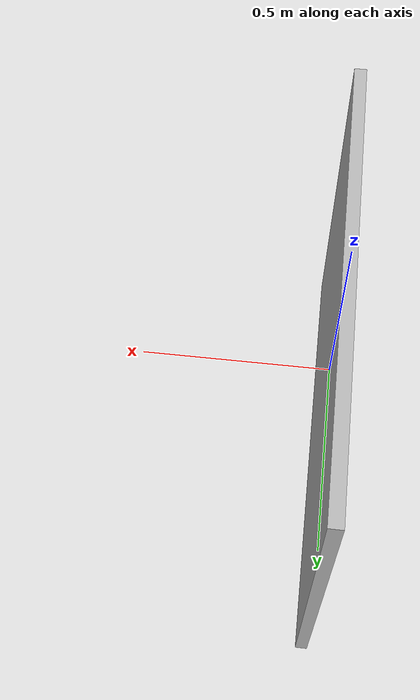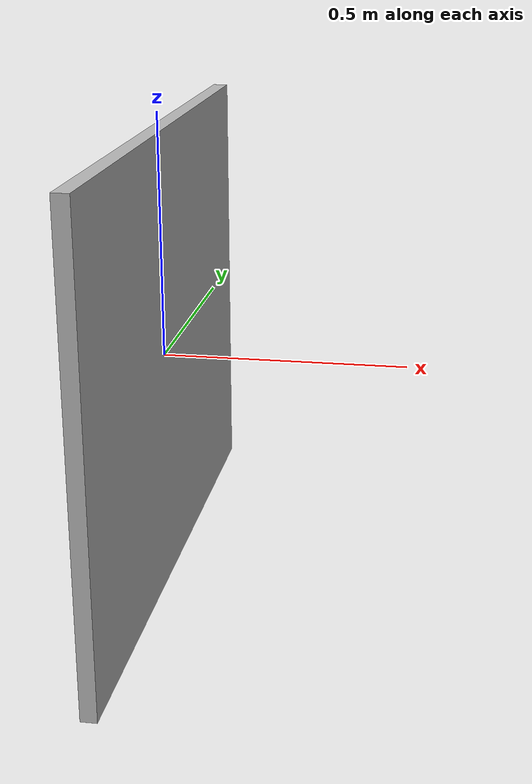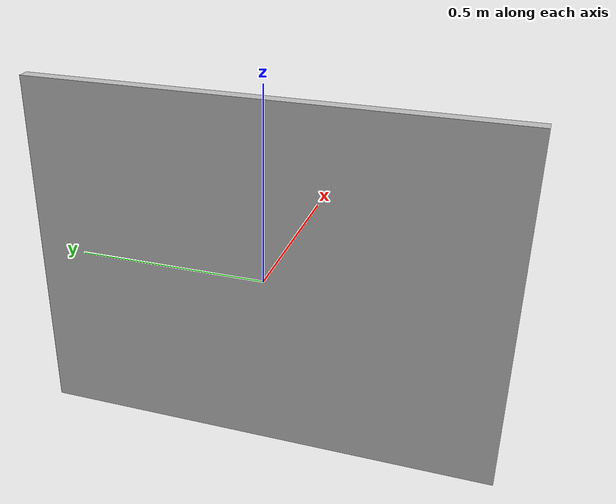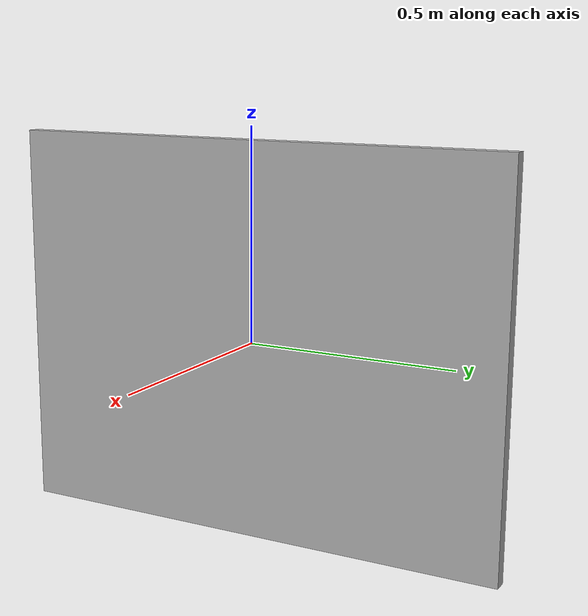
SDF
<?xml version='1.0'?>
<sdf version='1.7'>
  <model name='wall'>
    <link name='link_0'>
      <inertial>
        <mass>0.0370544</mass>
        <inertia>
          <ixx>0.0074647</ixx>
          <ixy>0</ixy>
          <ixz>0</ixz>
          <iyy>0.00273036</iyy>
          <iyz>0</iyz>
          <izz>0.00474062</izz>
        </inertia>
        <pose>0 0 0 0 -0 0</pose>
      </inertial>
      <pose>-0 -0 0 0 -0 0</pose>
      <visual name='visual'>
        <pose>0 0 0 0 -0 0</pose>
        <geometry>
          <box>
            <size>0.031883 1.23864 0.93979</size>
          </box>
        </geometry>
        <material>
          <lighting>1</lighting>
          <script>
            <uri>model://wall_1/materials/scripts</uri>
            <uri>model://wall_1/materials/textures</uri>
            <name>Labyrinth/Aruco_1</name>
          </script>
          <shader type='pixel' />
        </material>
        <transparency>0</transparency>
        <cast_shadows>1</cast_shadows>
      </visual>
      <collision name='collision'>
        <laser_retro>0</laser_retro>
        <max_contacts>10</max_contacts>
        <pose>0 0 0 0 -0 0</pose>
        <geometry>
          <box>
            <size>0.031883 1.23864 0.93979</size>
          </box>
        </geometry>
        <surface>
          <friction>
            <ode>
              <mu>1</mu>
              <mu2>1</mu2>
              <fdir1>0 0 0</fdir1>
              <slip1>0</slip1>
              <slip2>0</slip2>
            </ode>
            <torsional>
              <coefficient>1</coefficient>
              <patch_radius>0</patch_radius>
              <surface_radius>0</surface_radius>
              <use_patch_radius>1</use_patch_radius>
              <ode>
                <slip>0</slip>
              </ode>
            </torsional>
          </friction>
          <bounce>
            <restitution_coefficient>0</restitution_coefficient>
            <threshold>1e+06</threshold>
          </bounce>
          <contact>
            <collide_without_contact>0</collide_without_contact>
            <collide_without_contact_bitmask>1</collide_without_contact_bitmask>
            <collide_bitmask>1</collide_bitmask>
            <ode>
              <soft_cfm>0</soft_cfm>
              <soft_erp>0.2</soft_erp>
              <kp>1e+13</kp>
              <kd>1</kd>
              <max_vel>0.01</max_vel>
              <min_depth>0</min_depth>
            </ode>
            <bullet>
              <split_impulse>1</split_impulse>
              <split_impulse_penetration_threshold>-0.01</split_impulse_penetration_threshold>
              <soft_cfm>0</soft_cfm>
              <soft_erp>0.2</soft_erp>
              <kp>1e+13</kp>
              <kd>1</kd>
            </bullet>
          </contact>
        </surface>
      </collision>
    </link>
    <static>0</static>
    <allow_auto_disable>1</allow_auto_disable>
  </model>
</sdf>
